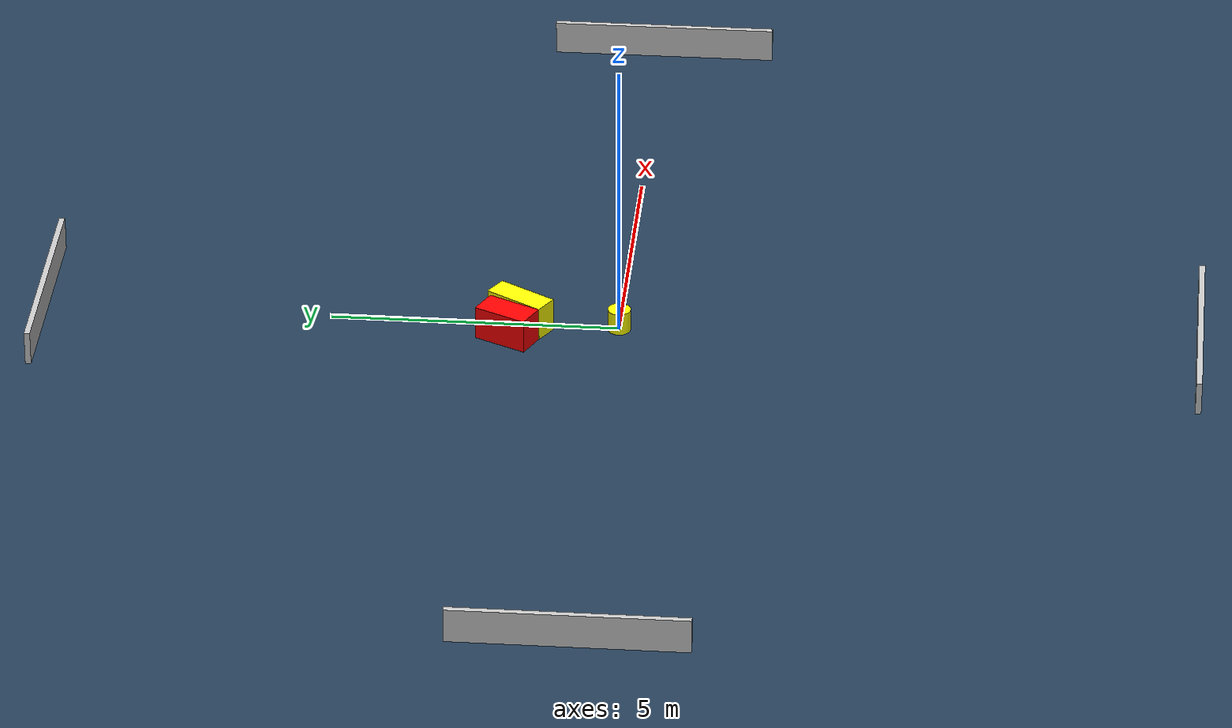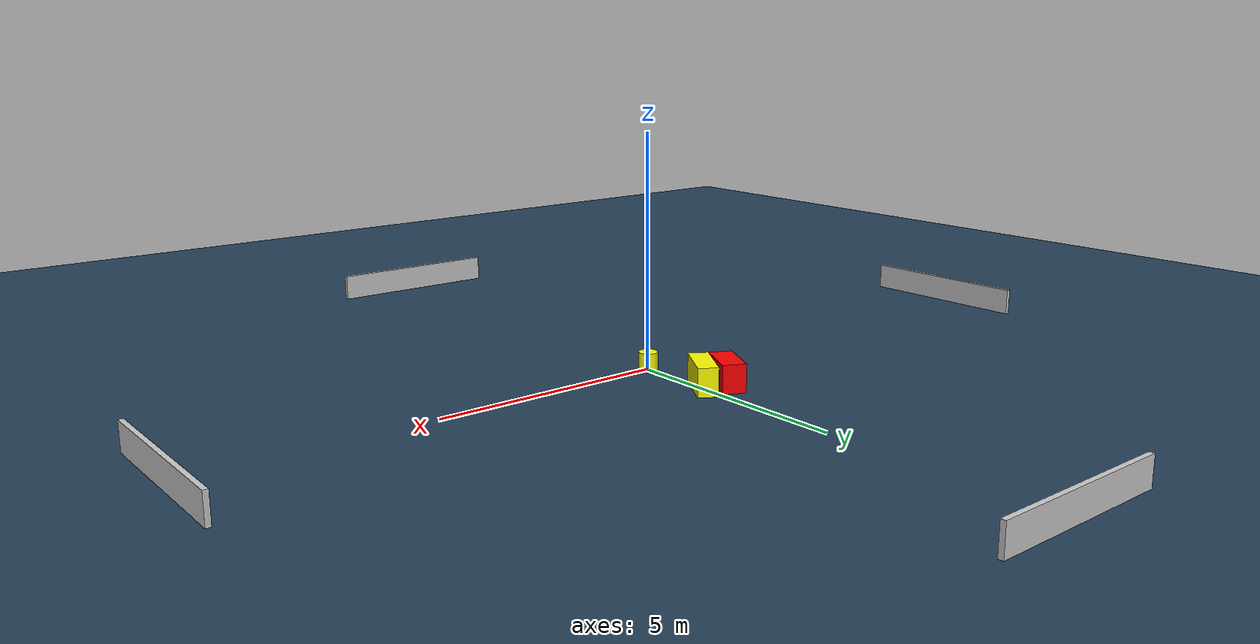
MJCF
<?xml version="1.0" ?>
<mujoco model="generated_environment">
  <option timestep="0.01" integrator="RK4" cone="elliptic"/>
  <default>
    <geom density="1"/>
  </default>
  <asset>
    <texture builtin="gradient" height="3072" name="skybox" rgb1="0.3 0.5 0.7" rgb2="0 0 0" type="skybox" width="512"/>
    <texture builtin="checker" height="300" name="groundplane" rgb1="0.2 0.3 0.4" rgb2="0.1 0.2 0.3" type="2d" width="300"/>
    <material name="groundplane" reflectance="0.2" texrepeat="5 5" texture="groundplane"/>
  </asset>
  <worldbody>
    <light dir="0 0 -1" directional="true" pos="0 0 1.5"/>
    <geom condim="3" friction="0.5 0.005 0.001" material="groundplane" name="floor" pos="0 0 0" size="0 0 0.05" type="plane"/>
    <body name="walls">
      <geom name="wall_1" condim="4" pos="-10.0 0.0 0.3" rgba="0.800000011920929 0.800000011920929 0.800000011920929 1.0" size="0.05 2.0 0.3" type="box"/>
      <geom name="wall_2" condim="4" pos="10.0 0.0 0.3" rgba="0.800000011920929 0.800000011920929 0.800000011920929 1.0" size="0.05 2.0 0.3" type="box"/>
      <geom name="wall_3" condim="4" pos="0.0 -10.0 0.3" rgba="0.800000011920929 0.800000011920929 0.800000011920929 1.0" size="2.0 0.05 0.3" type="box"/>
      <geom name="wall_4" condim="4" pos="0.0 10.0 0.3" rgba="0.800000011920929 0.800000011920929 0.800000011920929 1.0" size="2.0 0.05 0.3" type="box"/>
    </body>
    <body name="robot">
      <joint name="joint_x" type="slide" pos="0 0 0" axis="1 0 0"/>
      <joint name="joint_y" type="slide" pos="0 0 0" axis="0 1 0"/>
      <geom name="robot" type="cylinder" pos="0.0 0.0 0.2" size="0.2 0.2 0.0" mass="5.0" friction="1.0 0.005 0.0001" condim="4" rgba="1.0 1.0 0.0 1.0"/>
    </body>
    <body name="obstacle_1_movable">
      <geom name="obstacle_1_movable" condim="4" pos="-0.0015720279880079688 1.7105283855799247 0.3" euler="0 0 58.71902764698273" friction="0.0 0.005 0.001" rgba="1.0 1.0 0.0 1.0" size="0.5490917745305439 0.21233454354309408 0.3" type="box" mass="0.1"/>
      <joint type="free"/>
    </body>
    <body name="obstacle_2_static">
      <geom name="obstacle_2_static" condim="4" pos="-0.47953848860217807 1.900250295924084 0.3" euler="0 0 154.12396136726042" friction="0.0 0.005 0.001" rgba="1.0 0.0 0.0 1.0" size="0.24723398770302735 0.4849415196796653 0.3" type="box"/>
    </body>
  </worldbody>
  <actuator>
    <motor name="actuator_x" joint="joint_x" gear="1" ctrlrange="-1 1"/>
    <motor name="actuator_y" joint="joint_y" gear="1" ctrlrange="-1 1"/>
  </actuator>
</mujoco>
